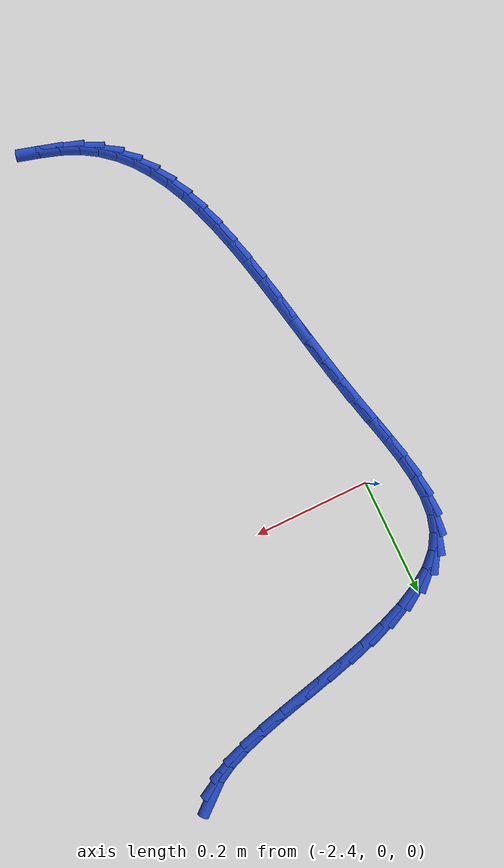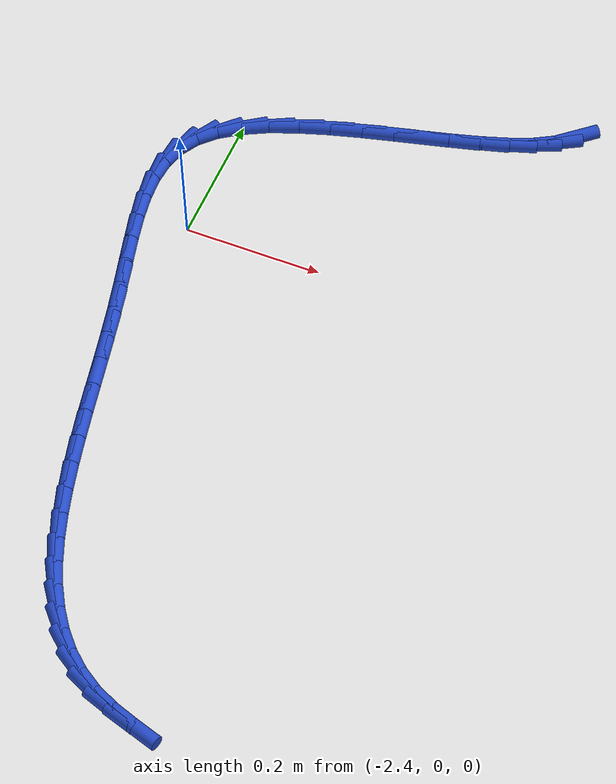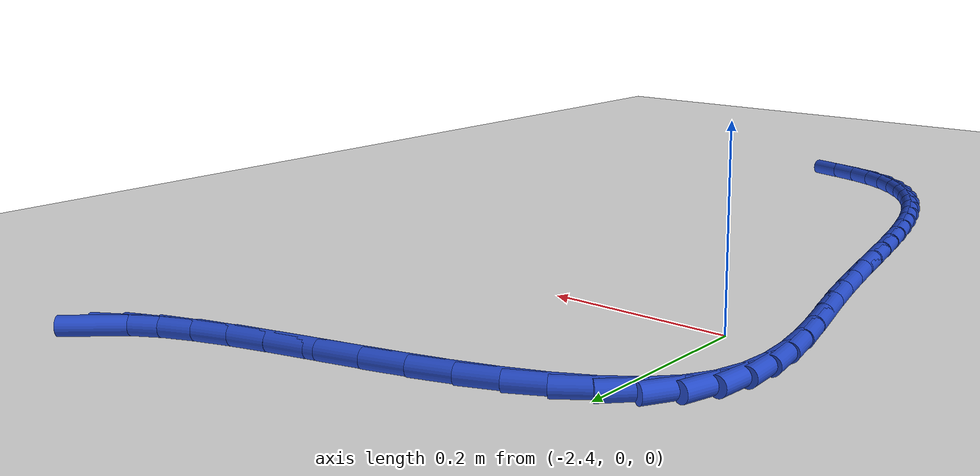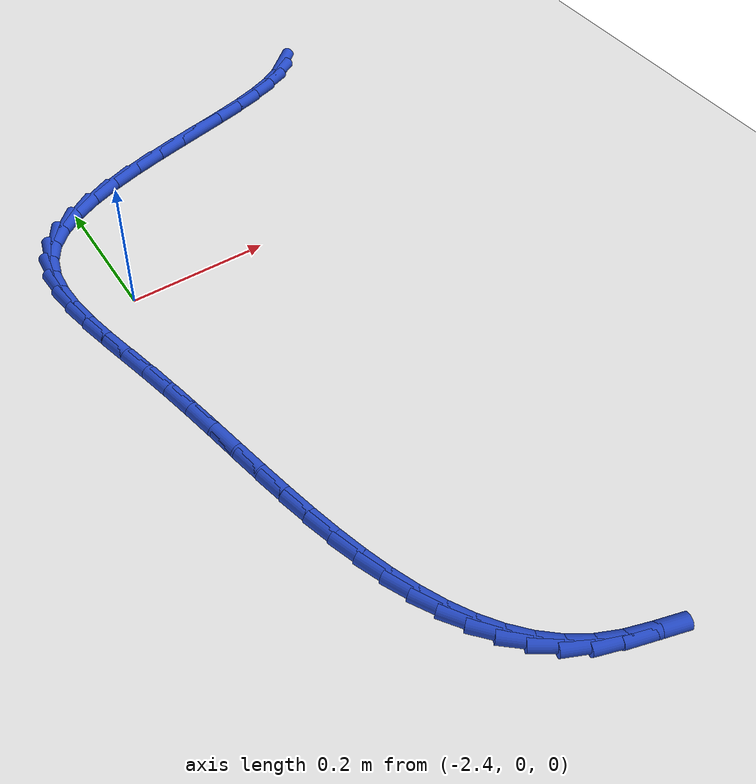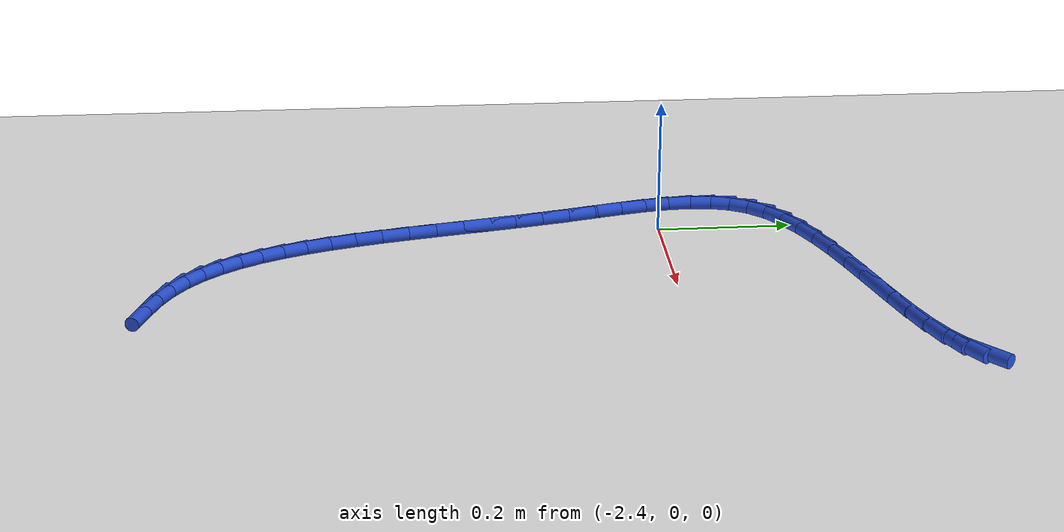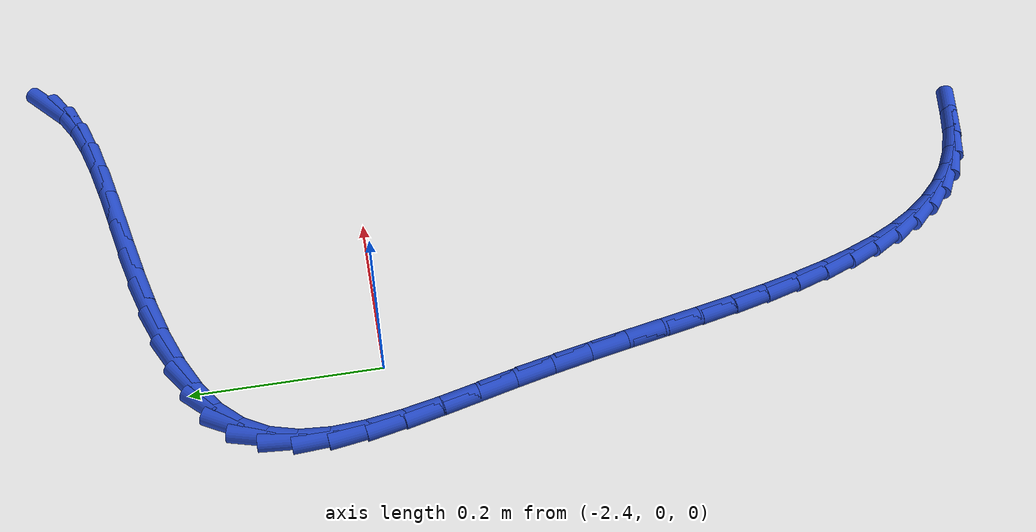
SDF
<sdf version="1.6">
 <world name="default">
  <model name="ground_plane">
   <static>1</static>
   <link name="link">
    <collision name="collision">
     <geometry><plane><normal>0 0 1</normal><size>100 100</size></plane></geometry>
     <surface><friction><ode><mu>100</mu><mu2>50</mu2></ode></friction></surface>
    </collision>
    <visual name="visual">
     <cast_shadows>0</cast_shadows>
     <geometry><plane><normal>0 0 1</normal><size>100 100</size></plane></geometry>
     <material>
      <script><uri>file://media/materials/scripts/gazebo.material</uri><name>Gazebo/WhiteGlow</name></script>
     </material>
    </visual>
   </link>
  </model>
  <model name="line">
   <link name="link_103">
    <pose>-1.9488781654335983 0.3540217169369798 0.01 0 1.57 0.7052104419745144</pose>
    <collision name="collision">
     <geometry><cylinder><radius>0.01</radius><length>0.08</length></cylinder></geometry>
    </collision>
    <visual name="visual">
     <material>
      <script><name>Gazebo/Blue</name><uri>file://media/materials/scripts/gazebo.material</uri></script>
     </material>
     <geometry><cylinder><radius>0.01</radius><length>0.08</length></cylinder></geometry>
    </visual>
   </link>
   <link name="link_104">
    <pose>-1.9690658741233529 0.3368372385304321 0.01 0 1.57 0.5087958329363389</pose>
    <collision name="collision">
     <geometry><cylinder><radius>0.01</radius><length>0.08</length></cylinder></geometry>
    </collision>
    <visual name="visual">
     <material>
      <script><name>Gazebo/Blue</name><uri>file://media/materials/scripts/gazebo.material</uri></script>
     </material>
     <geometry><cylinder><radius>0.01</radius><length>0.08</length></cylinder></geometry>
    </visual>
   </link>
   <link name="link_105">
    <pose>-1.9961238342174594 0.32174488067804874 0.01 0 1.57 0.3883126257553814</pose>
    <collision name="collision">
     <geometry><cylinder><radius>0.01</radius><length>0.08</length></cylinder></geometry>
    </collision>
    <visual name="visual">
     <material>
      <script><name>Gazebo/Blue</name><uri>file://media/materials/scripts/gazebo.material</uri></script>
     </material>
     <geometry><cylinder><radius>0.01</radius><length>0.08</length></cylinder></geometry>
    </visual>
   </link>
   <link name="link_106">
    <pose>-2.028942709097678 0.3083192107257346 0.01 0 1.57 0.3143892103237064</pose>
    <collision name="collision">
     <geometry><cylinder><radius>0.01</radius><length>0.08</length></cylinder></geometry>
    </collision>
    <visual name="visual">
     <material>
      <script><name>Gazebo/Blue</name><uri>file://media/materials/scripts/gazebo.material</uri></script>
     </material>
     <geometry><cylinder><radius>0.01</radius><length>0.08</length></cylinder></geometry>
    </visual>
   </link>
   <link name="link_107">
    <pose>-2.0664131621457673 0.2961347960193952 0.01 0 1.57 0.2704075090256907</pose>
    <collision name="collision">
     <geometry><cylinder><radius>0.01</radius><length>0.08</length></cylinder></geometry>
    </collision>
    <visual name="visual">
     <material>
      <script><name>Gazebo/Blue</name><uri>file://media/materials/scripts/gazebo.material</uri></script>
     </material>
     <geometry><cylinder><radius>0.01</radius><length>0.08</length></cylinder></geometry>
    </visual>
   </link>
   <link name="link_108">
    <pose>-2.1074258567434856 0.284766203904936 0.01 0 1.57 0.24750738505676903</pose>
    <collision name="collision">
     <geometry><cylinder><radius>0.01</radius><length>0.08</length></cylinder></geometry>
    </collision>
    <visual name="visual">
     <material>
      <script><name>Gazebo/Blue</name><uri>file://media/materials/scripts/gazebo.material</uri></script>
     </material>
     <geometry><cylinder><radius>0.01</radius><length>0.08</length></cylinder></geometry>
    </visual>
   </link>
   <link name="link_109">
    <pose>-2.1508714562725904 0.2737880017282623 0.01 0 1.57 0.24121105201070386</pose>
    <collision name="collision">
     <geometry><cylinder><radius>0.01</radius><length>0.08</length></cylinder></geometry>
    </collision>
    <visual name="visual">
     <material>
      <script><name>Gazebo/Blue</name><uri>file://media/materials/scripts/gazebo.material</uri></script>
     </material>
     <geometry><cylinder><radius>0.01</radius><length>0.08</length></cylinder></geometry>
    </visual>
   </link>
   <link name="link_110">
    <pose>-2.195640624114842 0.2627747568352795 0.01 0 1.57 0.2497406264324888</pose>
    <collision name="collision">
     <geometry><cylinder><radius>0.01</radius><length>0.08</length></cylinder></geometry>
    </collision>
    <visual name="visual">
     <material>
      <script><name>Gazebo/Blue</name><uri>file://media/materials/scripts/gazebo.material</uri></script>
     </material>
     <geometry><cylinder><radius>0.01</radius><length>0.08</length></cylinder></geometry>
    </visual>
   </link>
   <link name="link_111">
    <pose>-2.240624023651998 0.2513010365718928 0.01 0 1.57 0.27332218598845537</pose>
    <collision name="collision">
     <geometry><cylinder><radius>0.01</radius><length>0.08</length></cylinder></geometry>
    </collision>
    <visual name="visual">
     <material>
      <script><name>Gazebo/Blue</name><uri>file://media/materials/scripts/gazebo.material</uri></script>
     </material>
     <geometry><cylinder><radius>0.01</radius><length>0.08</length></cylinder></geometry>
    </visual>
   </link>
   <link name="link_112">
    <pose>-2.2847123182658162 0.23894140828400767 0.01 0 1.57 0.31409685291679196</pose>
    <collision name="collision">
     <geometry><cylinder><radius>0.01</radius><length>0.08</length></cylinder></geometry>
    </collision>
    <visual name="visual">
     <material>
      <script><name>Gazebo/Blue</name><uri>file://media/materials/scripts/gazebo.material</uri></script>
     </material>
     <geometry><cylinder><radius>0.01</radius><length>0.08</length></cylinder></geometry>
    </visual>
   </link>
   <link name="link_113">
    <pose>-2.326796171338057 0.22527043931752944 0.01 0 1.57 0.3765118272155247</pose>
    <collision name="collision">
     <geometry><cylinder><radius>0.01</radius><length>0.08</length></cylinder></geometry>
    </collision>
    <visual name="visual">
     <material>
      <script><name>Gazebo/Blue</name><uri>file://media/materials/scripts/gazebo.material</uri></script>
     </material>
     <geometry><cylinder><radius>0.01</radius><length>0.08</length></cylinder></geometry>
    </visual>
   </link>
   <link name="link_114">
    <pose>-2.3657662462504785 0.20986269701836355 0.01 0 1.57 0.4681607758998985</pose>
    <collision name="collision">
     <geometry><cylinder><radius>0.01</radius><length>0.08</length></cylinder></geometry>
    </collision>
    <visual name="visual">
     <material>
      <script><name>Gazebo/Blue</name><uri>file://media/materials/scripts/gazebo.material</uri></script>
     </material>
     <geometry><cylinder><radius>0.01</radius><length>0.08</length></cylinder></geometry>
    </visual>
   </link>
   <link name="link_115">
    <pose>-2.4005132063848387 0.19229274873241525 0.01 0 1.57 0.6007878428128963</pose>
    <collision name="collision">
     <geometry><cylinder><radius>0.01</radius><length>0.08</length></cylinder></geometry>
    </collision>
    <visual name="visual">
     <material>
      <script><name>Gazebo/Blue</name><uri>file://media/materials/scripts/gazebo.material</uri></script>
     </material>
     <geometry><cylinder><radius>0.01</radius><length>0.08</length></cylinder></geometry>
    </visual>
   </link>
   <link name="link_116">
    <pose>-2.4299277151228966 0.1721351618055899 0.01 0 1.57 0.7896877557235806</pose>
    <collision name="collision">
     <geometry><cylinder><radius>0.01</radius><length>0.08</length></cylinder></geometry>
    </collision>
    <visual name="visual">
     <material>
      <script><name>Gazebo/Blue</name><uri>file://media/materials/scripts/gazebo.material</uri></script>
     </material>
     <geometry><cylinder><radius>0.01</radius><length>0.08</length></cylinder></geometry>
    </visual>
   </link>
   <link name="link_117">
    <pose>-2.45290043584641 0.14896450358379287 0.01 0 1.57 1.039843815870917</pose>
    <collision name="collision">
     <geometry><cylinder><radius>0.01</radius><length>0.08</length></cylinder></geometry>
    </collision>
    <visual name="visual">
     <material>
      <script><name>Gazebo/Blue</name><uri>file://media/materials/scripts/gazebo.material</uri></script>
     </material>
     <geometry><cylinder><radius>0.01</radius><length>0.08</length></cylinder></geometry>
    </visual>
   </link>
   <link name="link_118">
    <pose>-2.4684885865932795 0.12241780029730995 0.01 0 1.57 1.2890645952000908</pose>
    <collision name="collision">
     <geometry><cylinder><radius>0.01</radius><length>0.08</length></cylinder></geometry>
    </collision>
    <visual name="visual">
     <material>
      <script><name>Gazebo/Blue</name><uri>file://media/materials/scripts/gazebo.material</uri></script>
     </material>
     <geometry><cylinder><radius>0.01</radius><length>0.08</length></cylinder></geometry>
    </visual>
   </link>
   <link name="link_119">
    <pose>-2.477106852226988 0.09264113547613848 0.01 0 1.57 1.4874394576556116</pose>
    <collision name="collision">
     <geometry><cylinder><radius>0.01</radius><length>0.08</length></cylinder></geometry>
    </collision>
    <visual name="visual">
     <material>
      <script><name>Gazebo/Blue</name><uri>file://media/materials/scripts/gazebo.material</uri></script>
     </material>
     <geometry><cylinder><radius>0.01</radius><length>0.08</length></cylinder></geometry>
    </visual>
   </link>
   <link name="link_120">
    <pose>-2.4798316332976933 0.06002873956207285 0.01 0 1.57 -1.5113025535465492</pose>
    <collision name="collision">
     <geometry><cylinder><radius>0.01</radius><length>0.08</length></cylinder></geometry>
    </collision>
    <visual name="visual">
     <material>
      <script><name>Gazebo/Blue</name><uri>file://media/materials/scripts/gazebo.material</uri></script>
     </material>
     <geometry><cylinder><radius>0.01</radius><length>0.08</length></cylinder></geometry>
    </visual>
   </link>
   <link name="link_121">
    <pose>-2.477743780093199 0.024976511672255917 0.01 0 1.57 -1.4151848821336794</pose>
    <collision name="collision">
     <geometry><cylinder><radius>0.01</radius><length>0.08</length></cylinder></geometry>
    </collision>
    <visual name="visual">
     <material>
      <script><name>Gazebo/Blue</name><uri>file://media/materials/scripts/gazebo.material</uri></script>
     </material>
     <geometry><cylinder><radius>0.01</radius><length>0.08</length></cylinder></geometry>
    </visual>
   </link>
   <link name="link_122">
    <pose>-2.471924142901306 -0.01211964907616823 0.01 0 1.57 -1.3555549321891036</pose>
    <collision name="collision">
     <geometry><cylinder><radius>0.01</radius><length>0.08</length></cylinder></geometry>
    </collision>
    <visual name="visual">
     <material>
      <script><name>Gazebo/Blue</name><uri>file://media/materials/scripts/gazebo.material</uri></script>
     </material>
     <geometry><cylinder><radius>0.01</radius><length>0.08</length></cylinder></geometry>
    </visual>
   </link>
   <link name="link_123">
    <pose>-2.4634535720098194 -0.050863843566055854 0.01 0 1.57 -1.3248396481028193</pose>
    <collision name="collision">
     <geometry><cylinder><radius>0.01</radius><length>0.08</length></cylinder></geometry>
    </collision>
    <visual name="visual">
     <material>
      <script><name>Gazebo/Blue</name><uri>file://media/materials/scripts/gazebo.material</uri></script>
     </material>
     <geometry><cylinder><radius>0.01</radius><length>0.08</length></cylinder></geometry>
    </visual>
   </link>
   <link name="link_124">
    <pose>-2.4534129177065394 -0.0908601726802632 0.01 0 1.57 -1.3185337633686185</pose>
    <collision name="collision">
     <geometry><cylinder><radius>0.01</radius><length>0.08</length></cylinder></geometry>
    </collision>
    <visual name="visual">
     <material>
      <script><name>Gazebo/Blue</name><uri>file://media/materials/scripts/gazebo.material</uri></script>
     </material>
     <geometry><cylinder><radius>0.01</radius><length>0.08</length></cylinder></geometry>
    </visual>
   </link>
   <link name="link_125">
    <pose>-2.442883030279271 -0.1317127373016466 0.01 0 1.57 -1.3333563167471236</pose>
    <collision name="collision">
     <geometry><cylinder><radius>0.01</radius><length>0.08</length></cylinder></geometry>
    </collision>
    <visual name="visual">
     <material>
      <script><name>Gazebo/Blue</name><uri>file://media/materials/scripts/gazebo.material</uri></script>
     </material>
     <geometry><cylinder><radius>0.01</radius><length>0.08</length></cylinder></geometry>
    </visual>
   </link>
   <link name="link_126">
    <pose>-2.432883216422593 -0.1730334118090449 0.01 0 1.57 -1.3525245720255827</pose>
    <collision name="collision">
     <geometry><cylinder><radius>0.01</radius><length>0.08</length></cylinder></geometry>
    </collision>
    <visual name="visual">
     <material>
      <script><name>Gazebo/Blue</name><uri>file://media/materials/scripts/gazebo.material</uri></script>
     </material>
     <geometry><cylinder><radius>0.01</radius><length>0.08</length></cylinder></geometry>
    </visual>
   </link>
   <link name="link_127">
    <pose>-2.423679212520789 -0.21452925312545781 0.01 0 1.57 -1.3650852002588931</pose>
    <collision name="collision">
     <geometry><cylinder><radius>0.01</radius><length>0.08</length></cylinder></geometry>
    </collision>
    <visual name="visual">
     <material>
      <script><name>Gazebo/Blue</name><uri>file://media/materials/scripts/gazebo.material</uri></script>
     </material>
     <geometry><cylinder><radius>0.01</radius><length>0.08</length></cylinder></geometry>
    </visual>
   </link>
   <link name="link_128">
    <pose>-2.415031842316191 -0.2559710930721039 0.01 0 1.57 -1.3708967290803313</pose>
    <collision name="collision">
     <geometry><cylinder><radius>0.01</radius><length>0.08</length></cylinder></geometry>
    </collision>
    <visual name="visual">
     <material>
      <script><name>Gazebo/Blue</name><uri>file://media/materials/scripts/gazebo.material</uri></script>
     </material>
     <geometry><cylinder><radius>0.01</radius><length>0.08</length></cylinder></geometry>
    </visual>
   </link>
   <link name="link_129">
    <pose>-2.4066926309634704 -0.29713093796343554 0.01 0 1.57 -1.3698656576040704</pose>
    <collision name="collision">
     <geometry><cylinder><radius>0.01</radius><length>0.08</length></cylinder></geometry>
    </collision>
    <visual name="visual">
     <material>
      <script><name>Gazebo/Blue</name><uri>file://media/materials/scripts/gazebo.material</uri></script>
     </material>
     <geometry><cylinder><radius>0.01</radius><length>0.08</length></cylinder></geometry>
    </visual>
   </link>
   <link name="link_130">
    <pose>-2.3984131036172975 -0.33778079411390505 0.01 0 1.57 -1.3617215200044916</pose>
    <collision name="collision">
     <geometry><cylinder><radius>0.01</radius><length>0.08</length></cylinder></geometry>
    </collision>
    <visual name="visual">
     <material>
      <script><name>Gazebo/Blue</name><uri>file://media/materials/scripts/gazebo.material</uri></script>
     </material>
     <geometry><cylinder><radius>0.01</radius><length>0.08</length></cylinder></geometry>
    </visual>
   </link>
   <link name="link_131">
    <pose>-2.3899447854323443 -0.37769266783796485 0.01 0 1.57 -1.345995741973674</pose>
    <collision name="collision">
     <geometry><cylinder><radius>0.01</radius><length>0.08</length></cylinder></geometry>
    </collision>
    <visual name="visual">
     <material>
      <script><name>Gazebo/Blue</name><uri>file://media/materials/scripts/gazebo.material</uri></script>
     </material>
     <geometry><cylinder><radius>0.01</radius><length>0.08</length></cylinder></geometry>
    </visual>
   </link>
   <link name="link_132">
    <pose>-2.3810392015632824 -0.41663856545006717 0.01 0 1.57 -1.321998420329714</pose>
    <collision name="collision">
     <geometry><cylinder><radius>0.01</radius><length>0.08</length></cylinder></geometry>
    </collision>
    <visual name="visual">
     <material>
      <script><name>Gazebo/Blue</name><uri>file://media/materials/scripts/gazebo.material</uri></script>
     </material>
     <geometry><cylinder><radius>0.01</radius><length>0.08</length></cylinder></geometry>
    </visual>
   </link>
   <link name="link_133">
    <pose>-2.3714478771647816 -0.4543904932646642 0.01 0 1.57 -1.288796631365471</pose>
    <collision name="collision">
     <geometry><cylinder><radius>0.01</radius><length>0.08</length></cylinder></geometry>
    </collision>
    <visual name="visual">
     <material>
      <script><name>Gazebo/Blue</name><uri>file://media/materials/scripts/gazebo.material</uri></script>
     </material>
     <geometry><cylinder><radius>0.01</radius><length>0.08</length></cylinder></geometry>
    </visual>
   </link>
   <link name="link_134">
    <pose>-2.360922337391514 -0.49072045759620864 0.01 0 1.57 -1.2452039810648723</pose>
    <collision name="collision">
     <geometry><cylinder><radius>0.01</radius><length>0.08</length></cylinder></geometry>
    </collision>
    <visual name="visual">
     <material>
      <script><name>Gazebo/Blue</name><uri>file://media/materials/scripts/gazebo.material</uri></script>
     </material>
     <geometry><cylinder><radius>0.01</radius><length>0.08</length></cylinder></geometry>
    </visual>
   </link>
   <link name="link_135">
    <pose>-2.3492141073981507 -0.5254004647591526 0.01 0 1.57 -1.1898019412637397</pose>
    <collision name="collision">
     <geometry><cylinder><radius>0.01</radius><length>0.08</length></cylinder></geometry>
    </collision>
    <visual name="visual">
     <material>
      <script><name>Gazebo/Blue</name><uri>file://media/materials/scripts/gazebo.material</uri></script>
     </material>
     <geometry><cylinder><radius>0.01</radius><length>0.08</length></cylinder></geometry>
    </visual>
   </link>
   <link name="link_136">
    <pose>-2.336074712339363 -0.5582025210679484 0.01 0 1.57 -1.121030838147792</pose>
    <collision name="collision">
     <geometry><cylinder><radius>0.01</radius><length>0.08</length></cylinder></geometry>
    </collision>
    <visual name="visual">
     <material>
      <script><name>Gazebo/Blue</name><uri>file://media/materials/scripts/gazebo.material</uri></script>
     </material>
     <geometry><cylinder><radius>0.01</radius><length>0.08</length></cylinder></geometry>
    </visual>
   </link>
   <link name="link_137">
    <pose>-2.3212556773698214 -0.5888986328370485 0.01 0 1.57 -1.0374100649282034</pose>
    <collision name="collision">
     <geometry><cylinder><radius>0.01</radius><length>0.08</length></cylinder></geometry>
    </collision>
    <visual name="visual">
     <material>
      <script><name>Gazebo/Blue</name><uri>file://media/materials/scripts/gazebo.material</uri></script>
     </material>
     <geometry><cylinder><radius>0.01</radius><length>0.08</length></cylinder></geometry>
    </visual>
   </link>
   <link name="link_138">
    <pose>-2.304508527644198 -0.6172608063809051 0.01 0 1.57 -0.937957715069525</pose>
    <collision name="collision">
     <geometry><cylinder><radius>0.01</radius><length>0.08</length></cylinder></geometry>
    </collision>
    <visual name="visual">
     <material>
      <script><name>Gazebo/Blue</name><uri>file://media/materials/scripts/gazebo.material</uri></script>
     </material>
     <geometry><cylinder><radius>0.01</radius><length>0.08</length></cylinder></geometry>
    </visual>
   </link>
   <link name="link_139">
    <pose>-2.2855847883171636 -0.6430610480139707 0.01 0 1.57 -0.8228365958755302</pose>
    <collision name="collision">
     <geometry><cylinder><radius>0.01</radius><length>0.08</length></cylinder></geometry>
    </collision>
    <visual name="visual">
     <material>
      <script><name>Gazebo/Blue</name><uri>file://media/materials/scripts/gazebo.material</uri></script>
     </material>
     <geometry><cylinder><radius>0.01</radius><length>0.08</length></cylinder></geometry>
    </visual>
   </link>
   <link name="link_140">
    <pose>-2.2642359845433893 -0.6660713640506974 0.01 0 1.57 -0.6940937152403519</pose>
    <collision name="collision">
     <geometry><cylinder><radius>0.01</radius><length>0.08</length></cylinder></geometry>
    </collision>
    <visual name="visual">
     <material>
      <script><name>Gazebo/Blue</name><uri>file://media/materials/scripts/gazebo.material</uri></script>
     </material>
     <geometry><cylinder><radius>0.01</radius><length>0.08</length></cylinder></geometry>
    </visual>
   </link>
   <link name="link_141">
    <pose>-2.2402136414775464 -0.686063760805538 0.01 0 1.57 -0.5560936486939497</pose>
    <collision name="collision">
     <geometry><cylinder><radius>0.01</radius><length>0.08</length></cylinder></geometry>
    </collision>
    <visual name="visual">
     <material>
      <script><name>Gazebo/Blue</name><uri>file://media/materials/scripts/gazebo.material</uri></script>
     </material>
     <geometry><cylinder><radius>0.01</radius><length>0.08</length></cylinder></geometry>
    </visual>
   </link>
   <link name="link_142">
    <pose>-2.213269284274306 -0.7028102445929443 0.01 0 1.57 -0.4161811387619457</pose>
    <collision name="collision">
     <geometry><cylinder><radius>0.01</radius><length>0.08</length></cylinder></geometry>
    </collision>
    <visual name="visual">
     <material>
      <script><name>Gazebo/Blue</name><uri>file://media/materials/scripts/gazebo.material</uri></script>
     </material>
     <geometry><cylinder><radius>0.01</radius><length>0.08</length></cylinder></geometry>
    </visual>
   </link>
   <link name="link_143">
    <pose>-2.183174413365323 -0.7161121738285997 0.01 0 1.57 -0.3130130268917556</pose>
    <collision name="collision">
     <geometry><cylinder><radius>0.01</radius><length>0.08</length></cylinder></geometry>
    </collision>
    <visual name="visual">
     <material>
      <script><name>Gazebo/Blue</name><uri>file://media/materials/scripts/gazebo.material</uri></script>
     </material>
     <geometry><cylinder><radius>0.01</radius><length>0.08</length></cylinder></geometry>
    </visual>
   </link>
   <link name="link_144">
    <pose>-2.1503559326440493 -0.7267339708583302 0.01 0 1.57 -0.2797789869635331</pose>
    <collision name="collision">
     <geometry><cylinder><radius>0.01</radius><length>0.08</length></cylinder></geometry>
    </collision>
    <visual name="visual">
     <material>
      <script><name>Gazebo/Blue</name><uri>file://media/materials/scripts/gazebo.material</uri></script>
     </material>
     <geometry><cylinder><radius>0.01</radius><length>0.08</length></cylinder></geometry>
    </visual>
   </link>
  </model>
 </world>
</sdf>
